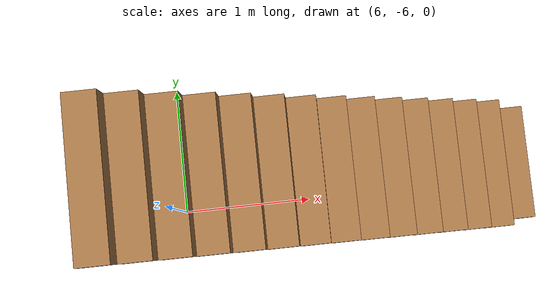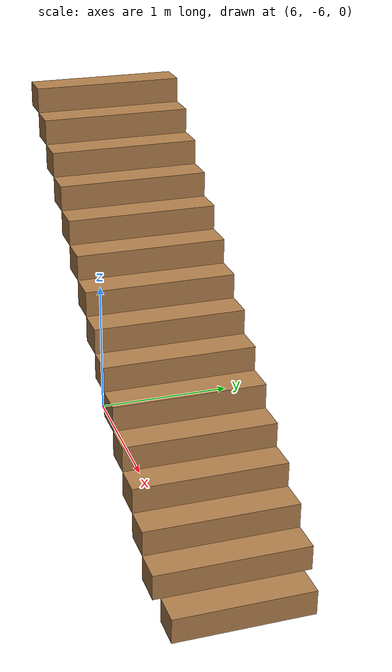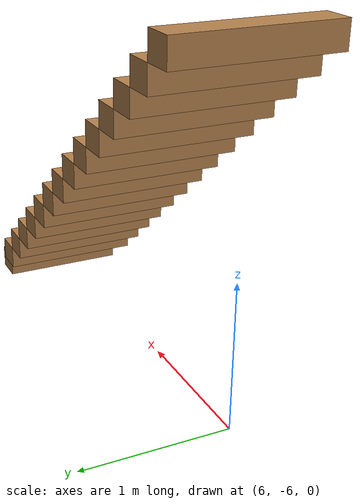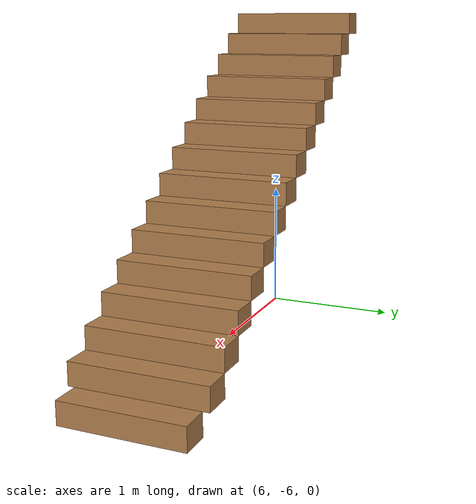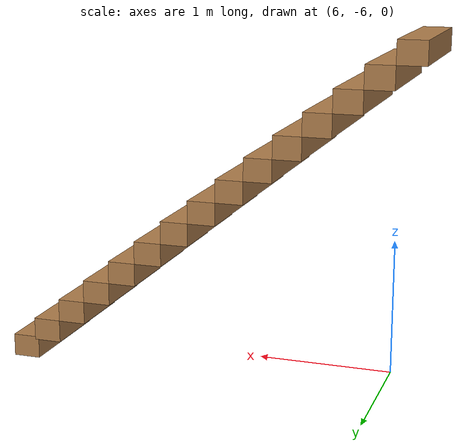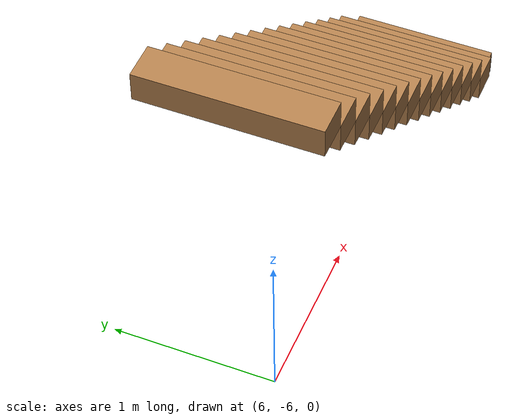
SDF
<?xml version='1.0'?>
<sdf version='1.7'>
  <model name='Stairs'>
    <pose>4.39982 -3.19448 0 0 -0 0</pose>
    <link name='Stairs_1'>
      <visual name='Stairs_1_Visual_0'>
        <pose>4.29715 -2.69448 0.083333 0 -0 -1.5708</pose>
        <geometry>
          <box>
            <size>0.9 0.205349 0.166667</size>
          </box>
        </geometry>
        <material>
          <script>
            <uri>file://media/materials/scripts/gazebo.material</uri>
            <name>Gazebo/Wood</name>
          </script>
          <ambient>1 1 1 1</ambient>
          <diffuse>1 1 1 1</diffuse>
          <specular>0.2 0.2 0.2 1</specular>
          <pbr>
            <metal>
              <albedo_map>wood.jpg</albedo_map>
            </metal>
          </pbr>
        </material>
        <meta>
          <layer>0</layer>
        </meta>
      </visual>
      <collision name='Stairs_1_Collision_0'>
        <geometry>
          <box>
            <size>1 0.205349 0.166667</size>
          </box>
        </geometry>
        <pose>4.29715 -2.69448 0.083333 0 -0 -1.5708</pose>
      </collision>
      <visual name='Stairs_1_Visual_1'>
        <pose>4.0918 -2.69448 0.25 0 -0 -1.5708</pose>
        <geometry>
          <box>
            <size>1 0.205349 0.166667</size>
          </box>
        </geometry>
        <material>
          <script>
            <uri>file://media/materials/scripts/gazebo.material</uri>
            <name>Gazebo/Wood</name>
          </script>
          <ambient>1 1 1 1</ambient>
          <diffuse>1 1 1 1</diffuse>
          <specular>0.2 0.2 0.2 1</specular>
          <pbr>
            <metal>
              <albedo_map>wood.jpg</albedo_map>
            </metal>
          </pbr>
        </material>
        <meta>
          <layer>0</layer>
        </meta>
      </visual>
      <collision name='Stairs_1_Collision_1'>
        <geometry>
          <box>
            <size>1 0.205349 0.166667</size>
          </box>
        </geometry>
        <pose>4.0918 -2.69448 0.25 0 -0 -1.5708</pose>
      </collision>
      <visual name='Stairs_1_Visual_2'>
        <pose>3.88645 -2.69448 0.416667 0 -0 -1.5708</pose>
        <geometry>
          <box>
            <size>1 0.205349 0.166667</size>
          </box>
        </geometry>
        <material>
          <script>
            <uri>file://media/materials/scripts/gazebo.material</uri>
            <name>Gazebo/Wood</name>
          </script>
          <ambient>1 1 1 1</ambient>
          <diffuse>1 1 1 1</diffuse>
          <specular>0.2 0.2 0.2 1</specular>
          <pbr>
            <metal>
              <albedo_map>wood.jpg</albedo_map>
            </metal>
          </pbr>
        </material>
        <meta>
          <layer>0</layer>
        </meta>
      </visual>
      <collision name='Stairs_1_Collision_2'>
        <geometry>
          <box>
            <size>1 0.205349 0.166667</size>
          </box>
        </geometry>
        <pose>3.88645 -2.69448 0.416667 0 -0 -1.5708</pose>
      </collision>
      <visual name='Stairs_1_Visual_3'>
        <pose>3.6811 -2.69448 0.583333 0 -0 -1.5708</pose>
        <geometry>
          <box>
            <size>1 0.205349 0.166667</size>
          </box>
        </geometry>
        <material>
          <script>
            <uri>file://media/materials/scripts/gazebo.material</uri>
            <name>Gazebo/Wood</name>
          </script>
          <ambient>1 1 1 1</ambient>
          <diffuse>1 1 1 1</diffuse>
          <specular>0.2 0.2 0.2 1</specular>
          <pbr>
            <metal>
              <albedo_map>wood.jpg</albedo_map>
            </metal>
          </pbr>
        </material>
        <meta>
          <layer>0</layer>
        </meta>
      </visual>
      <collision name='Stairs_1_Collision_3'>
        <geometry>
          <box>
            <size>1 0.205349 0.166667</size>
          </box>
        </geometry>
        <pose>3.6811 -2.69448 0.583333 0 -0 -1.5708</pose>
      </collision>
      <visual name='Stairs_1_Visual_4'>
        <pose>3.47575 -2.69448 0.75 0 -0 -1.5708</pose>
        <geometry>
          <box>
            <size>1 0.205349 0.166667</size>
          </box>
        </geometry>
        <material>
          <script>
            <uri>file://media/materials/scripts/gazebo.material</uri>
            <name>Gazebo/Wood</name>
          </script>
          <ambient>1 1 1 1</ambient>
          <diffuse>1 1 1 1</diffuse>
          <specular>0.2 0.2 0.2 1</specular>
          <pbr>
            <metal>
              <albedo_map>wood.jpg</albedo_map>
            </metal>
          </pbr>
        </material>
        <meta>
          <layer>0</layer>
        </meta>
      </visual>
      <collision name='Stairs_1_Collision_4'>
        <geometry>
          <box>
            <size>1 0.205349 0.166667</size>
          </box>
        </geometry>
        <pose>3.47575 -2.69448 0.75 0 -0 -1.5708</pose>
      </collision>
      <visual name='Stairs_1_Visual_5'>
        <pose>3.2704 -2.69448 0.916667 0 -0 -1.5708</pose>
        <geometry>
          <box>
            <size>1 0.205349 0.166667</size>
          </box>
        </geometry>
        <material>
          <script>
            <uri>file://media/materials/scripts/gazebo.material</uri>
            <name>Gazebo/Wood</name>
          </script>
          <ambient>1 1 1 1</ambient>
          <diffuse>1 1 1 1</diffuse>
          <specular>0.2 0.2 0.2 1</specular>
          <pbr>
            <metal>
              <albedo_map>wood.jpg</albedo_map>
            </metal>
          </pbr>
        </material>
        <meta>
          <layer>0</layer>
        </meta>
      </visual>
      <collision name='Stairs_1_Collision_5'>
        <geometry>
          <box>
            <size>1 0.205349 0.166667</size>
          </box>
        </geometry>
        <pose>3.2704 -2.69448 0.916667 0 -0 -1.5708</pose>
      </collision>
      <visual name='Stairs_1_Visual_6'>
        <pose>3.06505 -2.69448 1.08333 0 -0 -1.5708</pose>
        <geometry>
          <box>
            <size>1 0.205349 0.166667</size>
          </box>
        </geometry>
        <material>
          <script>
            <uri>file://media/materials/scripts/gazebo.material</uri>
            <name>Gazebo/Wood</name>
          </script>
          <ambient>1 1 1 1</ambient>
          <diffuse>1 1 1 1</diffuse>
          <specular>0.2 0.2 0.2 1</specular>
          <pbr>
            <metal>
              <albedo_map>wood.jpg</albedo_map>
            </metal>
          </pbr>
        </material>
        <meta>
          <layer>0</layer>
        </meta>
      </visual>
      <collision name='Stairs_1_Collision_6'>
        <geometry>
          <box>
            <size>1 0.205349 0.166667</size>
          </box>
        </geometry>
        <pose>3.06505 -2.69448 1.08333 0 -0 -1.5708</pose>
      </collision>
      <visual name='Stairs_1_Visual_7'>
        <pose>2.8597 -2.69448 1.25 0 -0 -1.5708</pose>
        <geometry>
          <box>
            <size>1 0.205349 0.166667</size>
          </box>
        </geometry>
        <material>
          <script>
            <uri>file://media/materials/scripts/gazebo.material</uri>
            <name>Gazebo/Wood</name>
          </script>
          <ambient>1 1 1 1</ambient>
          <diffuse>1 1 1 1</diffuse>
          <specular>0.2 0.2 0.2 1</specular>
          <pbr>
            <metal>
              <albedo_map>wood.jpg</albedo_map>
            </metal>
          </pbr>
        </material>
        <meta>
          <layer>0</layer>
        </meta>
      </visual>
      <collision name='Stairs_1_Collision_7'>
        <geometry>
          <box>
            <size>1 0.205349 0.166667</size>
          </box>
        </geometry>
        <pose>2.8597 -2.69448 1.25 0 -0 -1.5708</pose>
      </collision>
      <visual name='Stairs_1_Visual_8'>
        <pose>2.65435 -2.69448 1.41667 0 -0 -1.5708</pose>
        <geometry>
          <box>
            <size>1 0.205349 0.166667</size>
          </box>
        </geometry>
        <material>
          <script>
            <uri>file://media/materials/scripts/gazebo.material</uri>
            <name>Gazebo/Wood</name>
          </script>
          <ambient>1 1 1 1</ambient>
          <diffuse>1 1 1 1</diffuse>
          <specular>0.2 0.2 0.2 1</specular>
          <pbr>
            <metal>
              <albedo_map>wood.jpg</albedo_map>
            </metal>
          </pbr>
        </material>
        <meta>
          <layer>0</layer>
        </meta>
      </visual>
      <collision name='Stairs_1_Collision_8'>
        <geometry>
          <box>
            <size>1 0.205349 0.166667</size>
          </box>
        </geometry>
        <pose>2.65435 -2.69448 1.41667 0 -0 -1.5708</pose>
      </collision>
      <visual name='Stairs_1_Visual_9'>
        <pose>2.449 -2.69448 1.58333 0 -0 -1.5708</pose>
        <geometry>
          <box>
            <size>1 0.205349 0.166667</size>
          </box>
        </geometry>
        <material>
          <script>
            <uri>file://media/materials/scripts/gazebo.material</uri>
            <name>Gazebo/Wood</name>
          </script>
          <ambient>1 1 1 1</ambient>
          <diffuse>1 1 1 1</diffuse>
          <specular>0.2 0.2 0.2 1</specular>
          <pbr>
            <metal>
              <albedo_map>wood.jpg</albedo_map>
            </metal>
          </pbr>
        </material>
        <meta>
          <layer>0</layer>
        </meta>
      </visual>
      <collision name='Stairs_1_Collision_9'>
        <geometry>
          <box>
            <size>1 0.205349 0.166667</size>
          </box>
        </geometry>
        <pose>2.449 -2.69448 1.58333 0 -0 -1.5708</pose>
      </collision>
      <visual name='Stairs_1_Visual_10'>
        <pose>2.24365 -2.69448 1.75 0 -0 -1.5708</pose>
        <geometry>
          <box>
            <size>1 0.205349 0.166667</size>
          </box>
        </geometry>
        <material>
          <script>
            <uri>file://media/materials/scripts/gazebo.material</uri>
            <name>Gazebo/Wood</name>
          </script>
          <ambient>1 1 1 1</ambient>
          <diffuse>1 1 1 1</diffuse>
          <specular>0.2 0.2 0.2 1</specular>
          <pbr>
            <metal>
              <albedo_map>wood.jpg</albedo_map>
            </metal>
          </pbr>
        </material>
        <meta>
          <layer>0</layer>
        </meta>
      </visual>
      <collision name='Stairs_1_Collision_10'>
        <geometry>
          <box>
            <size>1 0.205349 0.166667</size>
          </box>
        </geometry>
        <pose>2.24365 -2.69448 1.75 0 -0 -1.5708</pose>
      </collision>
      <visual name='Stairs_1_Visual_11'>
        <pose>2.0383 -2.69448 1.91667 0 -0 -1.5708</pose>
        <geometry>
          <box>
            <size>1 0.205349 0.166667</size>
          </box>
        </geometry>
        <material>
          <script>
            <uri>file://media/materials/scripts/gazebo.material</uri>
            <name>Gazebo/Wood</name>
          </script>
          <ambient>1 1 1 1</ambient>
          <diffuse>1 1 1 1</diffuse>
          <specular>0.2 0.2 0.2 1</specular>
          <pbr>
            <metal>
              <albedo_map>wood.jpg</albedo_map>
            </metal>
          </pbr>
        </material>
        <meta>
          <layer>0</layer>
        </meta>
      </visual>
      <collision name='Stairs_1_Collision_11'>
        <geometry>
          <box>
            <size>1 0.205349 0.166667</size>
          </box>
        </geometry>
        <pose>2.0383 -2.69448 1.91667 0 -0 -1.5708</pose>
      </collision>
      <visual name='Stairs_1_Visual_12'>
        <pose>1.83295 -2.69448 2.08333 0 -0 -1.5708</pose>
        <geometry>
          <box>
            <size>1 0.205349 0.166667</size>
          </box>
        </geometry>
        <material>
          <script>
            <uri>file://media/materials/scripts/gazebo.material</uri>
            <name>Gazebo/Wood</name>
          </script>
          <ambient>1 1 1 1</ambient>
          <diffuse>1 1 1 1</diffuse>
          <specular>0.2 0.2 0.2 1</specular>
          <pbr>
            <metal>
              <albedo_map>wood.jpg</albedo_map>
            </metal>
          </pbr>
        </material>
        <meta>
          <layer>0</layer>
        </meta>
      </visual>
      <collision name='Stairs_1_Collision_12'>
        <geometry>
          <box>
            <size>1 0.205349 0.166667</size>
          </box>
        </geometry>
        <pose>1.83295 -2.69448 2.08333 0 -0 -1.5708</pose>
      </collision>
      <visual name='Stairs_1_Visual_13'>
        <pose>1.62761 -2.69448 2.25 0 -0 -1.5708</pose>
        <geometry>
          <box>
            <size>1 0.205349 0.166667</size>
          </box>
        </geometry>
        <material>
          <script>
            <uri>file://media/materials/scripts/gazebo.material</uri>
            <name>Gazebo/Wood</name>
          </script>
          <ambient>1 1 1 1</ambient>
          <diffuse>1 1 1 1</diffuse>
          <specular>0.2 0.2 0.2 1</specular>
          <pbr>
            <metal>
              <albedo_map>wood.jpg</albedo_map>
            </metal>
          </pbr>
        </material>
        <meta>
          <layer>0</layer>
        </meta>
      </visual>
      <collision name='Stairs_1_Collision_13'>
        <geometry>
          <box>
            <size>1 0.205349 0.166667</size>
          </box>
        </geometry>
        <pose>1.62761 -2.69448 2.25 0 -0 -1.5708</pose>
      </collision>
      <visual name='Stairs_1_Visual_14'>
        <pose>1.42226 -2.69448 2.41667 0 -0 -1.5708</pose>
        <geometry>
          <box>
            <size>1 0.205349 0.166667</size>
          </box>
        </geometry>
        <material>
          <script>
            <uri>file://media/materials/scripts/gazebo.material</uri>
            <name>Gazebo/Wood</name>
          </script>
          <ambient>1 1 1 1</ambient>
          <diffuse>1 1 1 1</diffuse>
          <specular>0.2 0.2 0.2 1</specular>
          <pbr>
            <metal>
              <albedo_map>wood.jpg</albedo_map>
            </metal>
          </pbr>
        </material>
        <meta>
          <layer>0</layer>
        </meta>
      </visual>
      <collision name='Stairs_1_Collision_14'>
        <geometry>
          <box>
            <size>1 0.205349 0.166667</size>
          </box>
        </geometry>
        <pose>1.42226 -2.69448 2.41667 0 -0 -1.5708</pose>
      </collision>
    </link>
    <static>1</static>
  </model>
</sdf>
